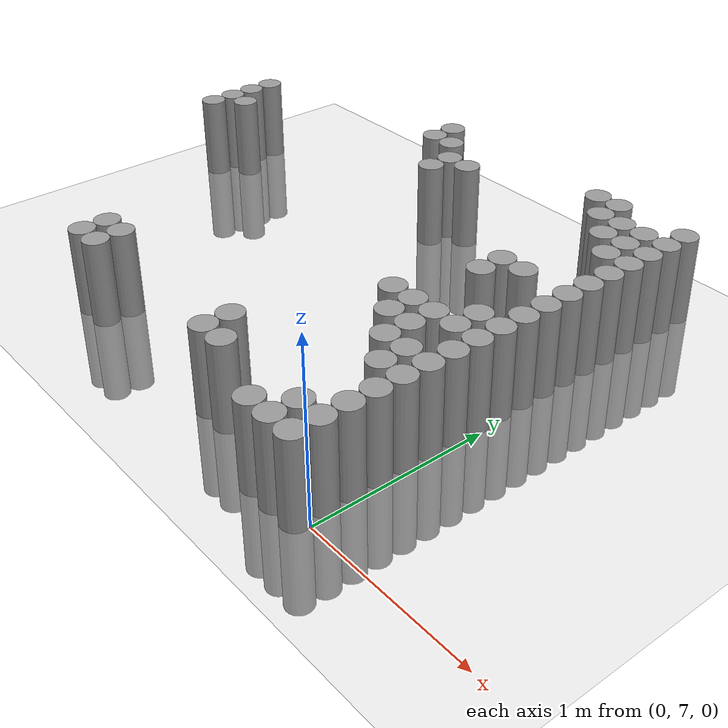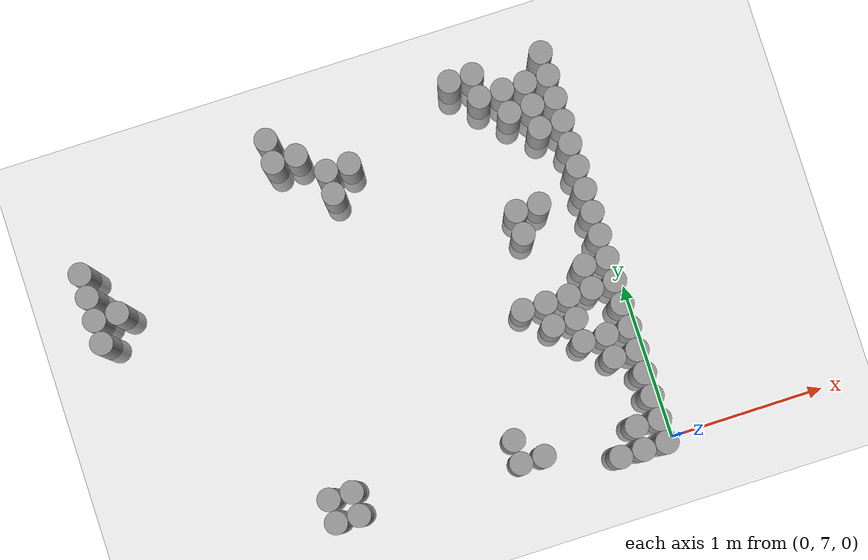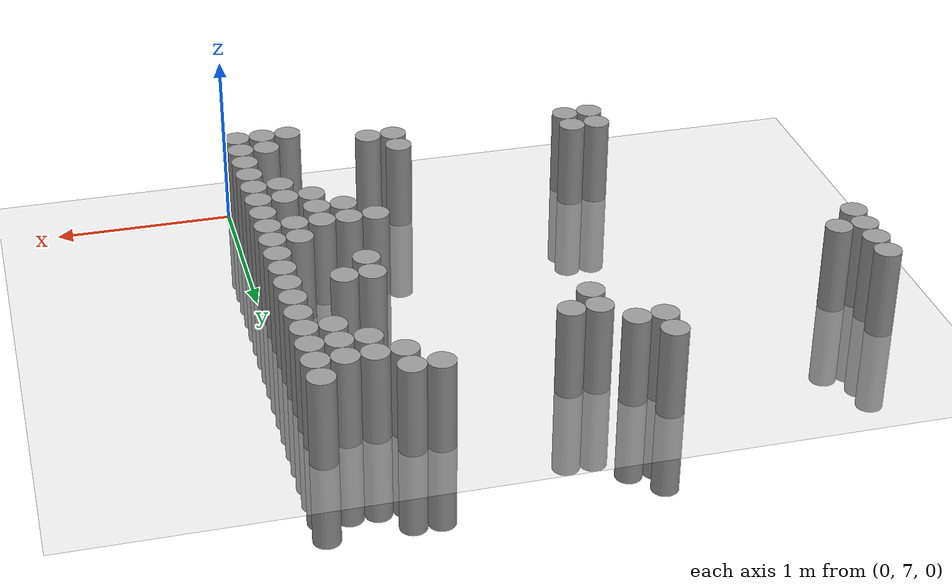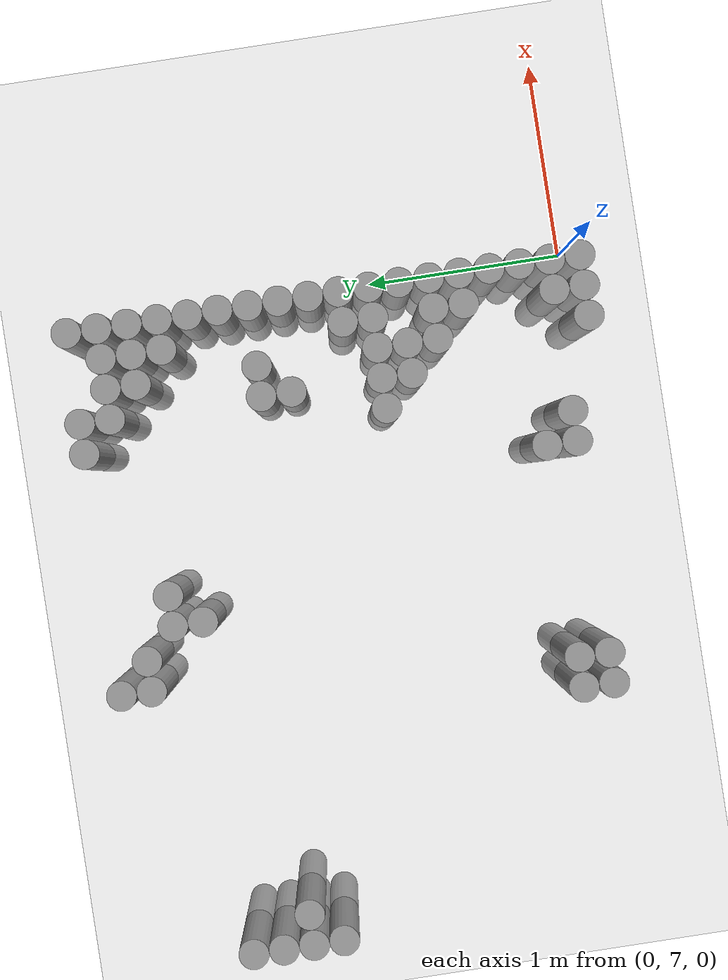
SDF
<sdf version="1.6">
 <world name="default">
  <model name="ground_plane">
   <static>1</static>
   <static>1</static>
   <link name="link">
    <collision name="collision">
     <geometry><plane><normal>0 0 1</normal><size>100 100</size></plane></geometry>
     <surface><friction><ode><mu>100</mu><mu2>50</mu2></ode></friction></surface>
    </collision>
    <visual name="visual">
     <cast_shadows>0</cast_shadows>
     <geometry><plane><normal>0 0 1</normal><size>100 100</size></plane></geometry>
     <material>
      <script><uri>file://media/materials/scripts/gazebo.material</uri><name>Gazebo/Grey</name></script>
     </material>
    </visual>
   </link>
  </model>
  <model name="unit_cylinder_162">
   <static>1</static>
   <pose>-3.225000 8.625000 0.000000 0.000000 0.000000 0.000000</pose>
   <link name="link">
    <inertial>
     <mass>1</mass>
     <inertia><ixx>0.145833</ixx><ixy>0</ixy><ixz>0</ixz><iyy>0.145833</iyy><iyz>0</iyz><izz>0.125</izz></inertia>
    </inertial>
    <collision name="collision">
     <geometry><cylinder><radius>0.075000</radius><length>1</length></cylinder></geometry>
    </collision>
    <visual name="visual">
     <geometry><cylinder><radius>0.075000</radius><length>1</length></cylinder></geometry>
     <material>
      <script><name>Gazebo/Grey</name><uri>file://media/materials/scripts/gazebo.material</uri></script>
     </material>
    </visual>
   </link>
  </model>
  <model name="unit_cylinder_163">
   <static>1</static>
   <pose>-3.225000 8.775000 0.000000 0.000000 0.000000 0.000000</pose>
   <link name="link">
    <inertial>
     <mass>1</mass>
     <inertia><ixx>0.145833</ixx><ixy>0</ixy><ixz>0</ixz><iyy>0.145833</iyy><iyz>0</iyz><izz>0.125</izz></inertia>
    </inertial>
    <collision name="collision">
     <geometry><cylinder><radius>0.075000</radius><length>1</length></cylinder></geometry>
    </collision>
    <visual name="visual">
     <geometry><cylinder><radius>0.075000</radius><length>1</length></cylinder></geometry>
     <material>
      <script><name>Gazebo/Grey</name><uri>file://media/materials/scripts/gazebo.material</uri></script>
     </material>
    </visual>
   </link>
  </model>
  <model name="unit_cylinder_164">
   <static>1</static>
   <pose>-3.225000 8.925000 0.000000 0.000000 0.000000 0.000000</pose>
   <link name="link">
    <inertial>
     <mass>1</mass>
     <inertia><ixx>0.145833</ixx><ixy>0</ixy><ixz>0</ixz><iyy>0.145833</iyy><iyz>0</iyz><izz>0.125</izz></inertia>
    </inertial>
    <collision name="collision">
     <geometry><cylinder><radius>0.075000</radius><length>1</length></cylinder></geometry>
    </collision>
    <visual name="visual">
     <geometry><cylinder><radius>0.075000</radius><length>1</length></cylinder></geometry>
     <material>
      <script><name>Gazebo/Grey</name><uri>file://media/materials/scripts/gazebo.material</uri></script>
     </material>
    </visual>
   </link>
  </model>
  <model name="unit_cylinder_165">
   <static>1</static>
   <pose>-3.225000 9.075000 0.000000 0.000000 0.000000 0.000000</pose>
   <link name="link">
    <inertial>
     <mass>1</mass>
     <inertia><ixx>0.145833</ixx><ixy>0</ixy><ixz>0</ixz><iyy>0.145833</iyy><iyz>0</iyz><izz>0.125</izz></inertia>
    </inertial>
    <collision name="collision">
     <geometry><cylinder><radius>0.075000</radius><length>1</length></cylinder></geometry>
    </collision>
    <visual name="visual">
     <geometry><cylinder><radius>0.075000</radius><length>1</length></cylinder></geometry>
     <material>
      <script><name>Gazebo/Grey</name><uri>file://media/materials/scripts/gazebo.material</uri></script>
     </material>
    </visual>
   </link>
  </model>
  <model name="unit_cylinder_167">
   <static>1</static>
   <pose>-3.075000 8.775000 0.000000 0.000000 0.000000 0.000000</pose>
   <link name="link">
    <inertial>
     <mass>1</mass>
     <inertia><ixx>0.145833</ixx><ixy>0</ixy><ixz>0</ixz><iyy>0.145833</iyy><iyz>0</iyz><izz>0.125</izz></inertia>
    </inertial>
    <collision name="collision">
     <geometry><cylinder><radius>0.075000</radius><length>1</length></cylinder></geometry>
    </collision>
    <visual name="visual">
     <geometry><cylinder><radius>0.075000</radius><length>1</length></cylinder></geometry>
     <material>
      <script><name>Gazebo/Grey</name><uri>file://media/materials/scripts/gazebo.material</uri></script>
     </material>
    </visual>
   </link>
  </model>
  <model name="unit_cylinder_186">
   <static>1</static>
   <pose>-2.175000 7.125000 0.000000 0.000000 0.000000 0.000000</pose>
   <link name="link">
    <inertial>
     <mass>1</mass>
     <inertia><ixx>0.145833</ixx><ixy>0</ixy><ixz>0</ixz><iyy>0.145833</iyy><iyz>0</iyz><izz>0.125</izz></inertia>
    </inertial>
    <collision name="collision">
     <geometry><cylinder><radius>0.075000</radius><length>1</length></cylinder></geometry>
    </collision>
    <visual name="visual">
     <geometry><cylinder><radius>0.075000</radius><length>1</length></cylinder></geometry>
     <material>
      <script><name>Gazebo/Grey</name><uri>file://media/materials/scripts/gazebo.material</uri></script>
     </material>
    </visual>
   </link>
  </model>
  <model name="unit_cylinder_187">
   <static>1</static>
   <pose>-2.175000 7.275000 0.000000 0.000000 0.000000 0.000000</pose>
   <link name="link">
    <inertial>
     <mass>1</mass>
     <inertia><ixx>0.145833</ixx><ixy>0</ixy><ixz>0</ixz><iyy>0.145833</iyy><iyz>0</iyz><izz>0.125</izz></inertia>
    </inertial>
    <collision name="collision">
     <geometry><cylinder><radius>0.075000</radius><length>1</length></cylinder></geometry>
    </collision>
    <visual name="visual">
     <geometry><cylinder><radius>0.075000</radius><length>1</length></cylinder></geometry>
     <material>
      <script><name>Gazebo/Grey</name><uri>file://media/materials/scripts/gazebo.material</uri></script>
     </material>
    </visual>
   </link>
  </model>
  <model name="unit_cylinder_194">
   <static>1</static>
   <pose>-2.025000 7.125000 0.000000 0.000000 0.000000 0.000000</pose>
   <link name="link">
    <inertial>
     <mass>1</mass>
     <inertia><ixx>0.145833</ixx><ixy>0</ixy><ixz>0</ixz><iyy>0.145833</iyy><iyz>0</iyz><izz>0.125</izz></inertia>
    </inertial>
    <collision name="collision">
     <geometry><cylinder><radius>0.075000</radius><length>1</length></cylinder></geometry>
    </collision>
    <visual name="visual">
     <geometry><cylinder><radius>0.075000</radius><length>1</length></cylinder></geometry>
     <material>
      <script><name>Gazebo/Grey</name><uri>file://media/materials/scripts/gazebo.material</uri></script>
     </material>
    </visual>
   </link>
  </model>
  <model name="unit_cylinder_195">
   <static>1</static>
   <pose>-2.025000 7.275000 0.000000 0.000000 0.000000 0.000000</pose>
   <link name="link">
    <inertial>
     <mass>1</mass>
     <inertia><ixx>0.145833</ixx><ixy>0</ixy><ixz>0</ixz><iyy>0.145833</iyy><iyz>0</iyz><izz>0.125</izz></inertia>
    </inertial>
    <collision name="collision">
     <geometry><cylinder><radius>0.075000</radius><length>1</length></cylinder></geometry>
    </collision>
    <visual name="visual">
     <geometry><cylinder><radius>0.075000</radius><length>1</length></cylinder></geometry>
     <material>
      <script><name>Gazebo/Grey</name><uri>file://media/materials/scripts/gazebo.material</uri></script>
     </material>
    </visual>
   </link>
  </model>
  <model name="unit_cylinder_200">
   <static>1</static>
   <pose>-1.875000 9.375000 0.000000 0.000000 0.000000 0.000000</pose>
   <link name="link">
    <inertial>
     <mass>1</mass>
     <inertia><ixx>0.145833</ixx><ixy>0</ixy><ixz>0</ixz><iyy>0.145833</iyy><iyz>0</iyz><izz>0.125</izz></inertia>
    </inertial>
    <collision name="collision">
     <geometry><cylinder><radius>0.075000</radius><length>1</length></cylinder></geometry>
    </collision>
    <visual name="visual">
     <geometry><cylinder><radius>0.075000</radius><length>1</length></cylinder></geometry>
     <material>
      <script><name>Gazebo/Grey</name><uri>file://media/materials/scripts/gazebo.material</uri></script>
     </material>
    </visual>
   </link>
  </model>
  <model name="unit_cylinder_201">
   <static>1</static>
   <pose>-1.875000 9.525000 0.000000 0.000000 0.000000 0.000000</pose>
   <link name="link">
    <inertial>
     <mass>1</mass>
     <inertia><ixx>0.145833</ixx><ixy>0</ixy><ixz>0</ixz><iyy>0.145833</iyy><iyz>0</iyz><izz>0.125</izz></inertia>
    </inertial>
    <collision name="collision">
     <geometry><cylinder><radius>0.075000</radius><length>1</length></cylinder></geometry>
    </collision>
    <visual name="visual">
     <geometry><cylinder><radius>0.075000</radius><length>1</length></cylinder></geometry>
     <material>
      <script><name>Gazebo/Grey</name><uri>file://media/materials/scripts/gazebo.material</uri></script>
     </material>
    </visual>
   </link>
  </model>
  <model name="unit_cylinder_204">
   <static>1</static>
   <pose>-1.725000 9.375000 0.000000 0.000000 0.000000 0.000000</pose>
   <link name="link">
    <inertial>
     <mass>1</mass>
     <inertia><ixx>0.145833</ixx><ixy>0</ixy><ixz>0</ixz><iyy>0.145833</iyy><iyz>0</iyz><izz>0.125</izz></inertia>
    </inertial>
    <collision name="collision">
     <geometry><cylinder><radius>0.075000</radius><length>1</length></cylinder></geometry>
    </collision>
    <visual name="visual">
     <geometry><cylinder><radius>0.075000</radius><length>1</length></cylinder></geometry>
     <material>
      <script><name>Gazebo/Grey</name><uri>file://media/materials/scripts/gazebo.material</uri></script>
     </material>
    </visual>
   </link>
  </model>
  <model name="unit_cylinder_207">
   <static>1</static>
   <pose>-1.575000 9.075000 0.000000 0.000000 0.000000 0.000000</pose>
   <link name="link">
    <inertial>
     <mass>1</mass>
     <inertia><ixx>0.145833</ixx><ixy>0</ixy><ixz>0</ixz><iyy>0.145833</iyy><iyz>0</iyz><izz>0.125</izz></inertia>
    </inertial>
    <collision name="collision">
     <geometry><cylinder><radius>0.075000</radius><length>1</length></cylinder></geometry>
    </collision>
    <visual name="visual">
     <geometry><cylinder><radius>0.075000</radius><length>1</length></cylinder></geometry>
     <material>
      <script><name>Gazebo/Grey</name><uri>file://media/materials/scripts/gazebo.material</uri></script>
     </material>
    </visual>
   </link>
  </model>
  <model name="unit_cylinder_208">
   <static>1</static>
   <pose>-1.575000 9.225000 0.000000 0.000000 0.000000 0.000000</pose>
   <link name="link">
    <inertial>
     <mass>1</mass>
     <inertia><ixx>0.145833</ixx><ixy>0</ixy><ixz>0</ixz><iyy>0.145833</iyy><iyz>0</iyz><izz>0.125</izz></inertia>
    </inertial>
    <collision name="collision">
     <geometry><cylinder><radius>0.075000</radius><length>1</length></cylinder></geometry>
    </collision>
    <visual name="visual">
     <geometry><cylinder><radius>0.075000</radius><length>1</length></cylinder></geometry>
     <material>
      <script><name>Gazebo/Grey</name><uri>file://media/materials/scripts/gazebo.material</uri></script>
     </material>
    </visual>
   </link>
  </model>
  <model name="unit_cylinder_212">
   <static>1</static>
   <pose>-1.425000 9.225000 0.000000 0.000000 0.000000 0.000000</pose>
   <link name="link">
    <inertial>
     <mass>1</mass>
     <inertia><ixx>0.145833</ixx><ixy>0</ixy><ixz>0</ixz><iyy>0.145833</iyy><iyz>0</iyz><izz>0.125</izz></inertia>
    </inertial>
    <collision name="collision">
     <geometry><cylinder><radius>0.075000</radius><length>1</length></cylinder></geometry>
    </collision>
    <visual name="visual">
     <geometry><cylinder><radius>0.075000</radius><length>1</length></cylinder></geometry>
     <material>
      <script><name>Gazebo/Grey</name><uri>file://media/materials/scripts/gazebo.material</uri></script>
     </material>
    </visual>
   </link>
  </model>
  <model name="unit_cylinder_222">
   <static>1</static>
   <pose>-0.975000 7.125000 0.000000 0.000000 0.000000 0.000000</pose>
   <link name="link">
    <inertial>
     <mass>1</mass>
     <inertia><ixx>0.145833</ixx><ixy>0</ixy><ixz>0</ixz><iyy>0.145833</iyy><iyz>0</iyz><izz>0.125</izz></inertia>
    </inertial>
    <collision name="collision">
     <geometry><cylinder><radius>0.075000</radius><length>1</length></cylinder></geometry>
    </collision>
    <visual name="visual">
     <geometry><cylinder><radius>0.075000</radius><length>1</length></cylinder></geometry>
     <material>
      <script><name>Gazebo/Grey</name><uri>file://media/materials/scripts/gazebo.material</uri></script>
     </material>
    </visual>
   </link>
  </model>
  <model name="unit_cylinder_223">
   <static>1</static>
   <pose>-0.975000 7.275000 0.000000 0.000000 0.000000 0.000000</pose>
   <link name="link">
    <inertial>
     <mass>1</mass>
     <inertia><ixx>0.145833</ixx><ixy>0</ixy><ixz>0</ixz><iyy>0.145833</iyy><iyz>0</iyz><izz>0.125</izz></inertia>
    </inertial>
    <collision name="collision">
     <geometry><cylinder><radius>0.075000</radius><length>1</length></cylinder></geometry>
    </collision>
    <visual name="visual">
     <geometry><cylinder><radius>0.075000</radius><length>1</length></cylinder></geometry>
     <material>
      <script><name>Gazebo/Grey</name><uri>file://media/materials/scripts/gazebo.material</uri></script>
     </material>
    </visual>
   </link>
  </model>
  <model name="unit_cylinder_226">
   <static>1</static>
   <pose>-0.825000 7.125000 0.000000 0.000000 0.000000 0.000000</pose>
   <link name="link">
    <inertial>
     <mass>1</mass>
     <inertia><ixx>0.145833</ixx><ixy>0</ixy><ixz>0</ixz><iyy>0.145833</iyy><iyz>0</iyz><izz>0.125</izz></inertia>
    </inertial>
    <collision name="collision">
     <geometry><cylinder><radius>0.075000</radius><length>1</length></cylinder></geometry>
    </collision>
    <visual name="visual">
     <geometry><cylinder><radius>0.075000</radius><length>1</length></cylinder></geometry>
     <material>
      <script><name>Gazebo/Grey</name><uri>file://media/materials/scripts/gazebo.material</uri></script>
     </material>
    </visual>
   </link>
  </model>
  <model name="unit_cylinder_229">
   <static>1</static>
   <pose>-0.675000 8.025000 0.000000 0.000000 0.000000 0.000000</pose>
   <link name="link">
    <inertial>
     <mass>1</mass>
     <inertia><ixx>0.145833</ixx><ixy>0</ixy><ixz>0</ixz><iyy>0.145833</iyy><iyz>0</iyz><izz>0.125</izz></inertia>
    </inertial>
    <collision name="collision">
     <geometry><cylinder><radius>0.075000</radius><length>1</length></cylinder></geometry>
    </collision>
    <visual name="visual">
     <geometry><cylinder><radius>0.075000</radius><length>1</length></cylinder></geometry>
     <material>
      <script><name>Gazebo/Grey</name><uri>file://media/materials/scripts/gazebo.material</uri></script>
     </material>
    </visual>
   </link>
  </model>
  <model name="unit_cylinder_230">
   <static>1</static>
   <pose>-0.675000 9.525000 0.000000 0.000000 0.000000 0.000000</pose>
   <link name="link">
    <inertial>
     <mass>1</mass>
     <inertia><ixx>0.145833</ixx><ixy>0</ixy><ixz>0</ixz><iyy>0.145833</iyy><iyz>0</iyz><izz>0.125</izz></inertia>
    </inertial>
    <collision name="collision">
     <geometry><cylinder><radius>0.075000</radius><length>1</length></cylinder></geometry>
    </collision>
    <visual name="visual">
     <geometry><cylinder><radius>0.075000</radius><length>1</length></cylinder></geometry>
     <material>
      <script><name>Gazebo/Grey</name><uri>file://media/materials/scripts/gazebo.material</uri></script>
     </material>
    </visual>
   </link>
  </model>
  <model name="unit_cylinder_235">
   <static>1</static>
   <pose>-0.525000 7.875000 0.000000 0.000000 0.000000 0.000000</pose>
   <link name="link">
    <inertial>
     <mass>1</mass>
     <inertia><ixx>0.145833</ixx><ixy>0</ixy><ixz>0</ixz><iyy>0.145833</iyy><iyz>0</iyz><izz>0.125</izz></inertia>
    </inertial>
    <collision name="collision">
     <geometry><cylinder><radius>0.075000</radius><length>1</length></cylinder></geometry>
    </collision>
    <visual name="visual">
     <geometry><cylinder><radius>0.075000</radius><length>1</length></cylinder></geometry>
     <material>
      <script><name>Gazebo/Grey</name><uri>file://media/materials/scripts/gazebo.material</uri></script>
     </material>
    </visual>
   </link>
  </model>
  <model name="unit_cylinder_236">
   <static>1</static>
   <pose>-0.525000 8.025000 0.000000 0.000000 0.000000 0.000000</pose>
   <link name="link">
    <inertial>
     <mass>1</mass>
     <inertia><ixx>0.145833</ixx><ixy>0</ixy><ixz>0</ixz><iyy>0.145833</iyy><iyz>0</iyz><izz>0.125</izz></inertia>
    </inertial>
    <collision name="collision">
     <geometry><cylinder><radius>0.075000</radius><length>1</length></cylinder></geometry>
    </collision>
    <visual name="visual">
     <geometry><cylinder><radius>0.075000</radius><length>1</length></cylinder></geometry>
     <material>
      <script><name>Gazebo/Grey</name><uri>file://media/materials/scripts/gazebo.material</uri></script>
     </material>
    </visual>
   </link>
  </model>
  <model name="unit_cylinder_237">
   <static>1</static>
   <pose>-0.525000 8.475000 0.000000 0.000000 0.000000 0.000000</pose>
   <link name="link">
    <inertial>
     <mass>1</mass>
     <inertia><ixx>0.145833</ixx><ixy>0</ixy><ixz>0</ixz><iyy>0.145833</iyy><iyz>0</iyz><izz>0.125</izz></inertia>
    </inertial>
    <collision name="collision">
     <geometry><cylinder><radius>0.075000</radius><length>1</length></cylinder></geometry>
    </collision>
    <visual name="visual">
     <geometry><cylinder><radius>0.075000</radius><length>1</length></cylinder></geometry>
     <material>
      <script><name>Gazebo/Grey</name><uri>file://media/materials/scripts/gazebo.material</uri></script>
     </material>
    </visual>
   </link>
  </model>
  <model name="unit_cylinder_238">
   <static>1</static>
   <pose>-0.525000 8.625000 0.000000 0.000000 0.000000 0.000000</pose>
   <link name="link">
    <inertial>
     <mass>1</mass>
     <inertia><ixx>0.145833</ixx><ixy>0</ixy><ixz>0</ixz><iyy>0.145833</iyy><iyz>0</iyz><izz>0.125</izz></inertia>
    </inertial>
    <collision name="collision">
     <geometry><cylinder><radius>0.075000</radius><length>1</length></cylinder></geometry>
    </collision>
    <visual name="visual">
     <geometry><cylinder><radius>0.075000</radius><length>1</length></cylinder></geometry>
     <material>
      <script><name>Gazebo/Grey</name><uri>file://media/materials/scripts/gazebo.material</uri></script>
     </material>
    </visual>
   </link>
  </model>
  <model name="unit_cylinder_239">
   <static>1</static>
   <pose>-0.525000 9.375000 0.000000 0.000000 0.000000 0.000000</pose>
   <link name="link">
    <inertial>
     <mass>1</mass>
     <inertia><ixx>0.145833</ixx><ixy>0</ixy><ixz>0</ixz><iyy>0.145833</iyy><iyz>0</iyz><izz>0.125</izz></inertia>
    </inertial>
    <collision name="collision">
     <geometry><cylinder><radius>0.075000</radius><length>1</length></cylinder></geometry>
    </collision>
    <visual name="visual">
     <geometry><cylinder><radius>0.075000</radius><length>1</length></cylinder></geometry>
     <material>
      <script><name>Gazebo/Grey</name><uri>file://media/materials/scripts/gazebo.material</uri></script>
     </material>
    </visual>
   </link>
  </model>
  <model name="unit_cylinder_240">
   <static>1</static>
   <pose>-0.525000 9.525000 0.000000 0.000000 0.000000 0.000000</pose>
   <link name="link">
    <inertial>
     <mass>1</mass>
     <inertia><ixx>0.145833</ixx><ixy>0</ixy><ixz>0</ixz><iyy>0.145833</iyy><iyz>0</iyz><izz>0.125</izz></inertia>
    </inertial>
    <collision name="collision">
     <geometry><cylinder><radius>0.075000</radius><length>1</length></cylinder></geometry>
    </collision>
    <visual name="visual">
     <geometry><cylinder><radius>0.075000</radius><length>1</length></cylinder></geometry>
     <material>
      <script><name>Gazebo/Grey</name><uri>file://media/materials/scripts/gazebo.material</uri></script>
     </material>
    </visual>
   </link>
  </model>
  <model name="unit_cylinder_247">
   <static>1</static>
   <pose>-0.375000 6.975000 0.000000 0.000000 0.000000 0.000000</pose>
   <link name="link">
    <inertial>
     <mass>1</mass>
     <inertia><ixx>0.145833</ixx><ixy>0</ixy><ixz>0</ixz><iyy>0.145833</iyy><iyz>0</iyz><izz>0.125</izz></inertia>
    </inertial>
    <collision name="collision">
     <geometry><cylinder><radius>0.075000</radius><length>1</length></cylinder></geometry>
    </collision>
    <visual name="visual">
     <geometry><cylinder><radius>0.075000</radius><length>1</length></cylinder></geometry>
     <material>
      <script><name>Gazebo/Grey</name><uri>file://media/materials/scripts/gazebo.material</uri></script>
     </material>
    </visual>
   </link>
  </model>
  <model name="unit_cylinder_248">
   <static>1</static>
   <pose>-0.375000 7.725000 0.000000 0.000000 0.000000 0.000000</pose>
   <link name="link">
    <inertial>
     <mass>1</mass>
     <inertia><ixx>0.145833</ixx><ixy>0</ixy><ixz>0</ixz><iyy>0.145833</iyy><iyz>0</iyz><izz>0.125</izz></inertia>
    </inertial>
    <collision name="collision">
     <geometry><cylinder><radius>0.075000</radius><length>1</length></cylinder></geometry>
    </collision>
    <visual name="visual">
     <geometry><cylinder><radius>0.075000</radius><length>1</length></cylinder></geometry>
     <material>
      <script><name>Gazebo/Grey</name><uri>file://media/materials/scripts/gazebo.material</uri></script>
     </material>
    </visual>
   </link>
  </model>
  <model name="unit_cylinder_249">
   <static>1</static>
   <pose>-0.375000 7.875000 0.000000 0.000000 0.000000 0.000000</pose>
   <link name="link">
    <inertial>
     <mass>1</mass>
     <inertia><ixx>0.145833</ixx><ixy>0</ixy><ixz>0</ixz><iyy>0.145833</iyy><iyz>0</iyz><izz>0.125</izz></inertia>
    </inertial>
    <collision name="collision">
     <geometry><cylinder><radius>0.075000</radius><length>1</length></cylinder></geometry>
    </collision>
    <visual name="visual">
     <geometry><cylinder><radius>0.075000</radius><length>1</length></cylinder></geometry>
     <material>
      <script><name>Gazebo/Grey</name><uri>file://media/materials/scripts/gazebo.material</uri></script>
     </material>
    </visual>
   </link>
  </model>
  <model name="unit_cylinder_250">
   <static>1</static>
   <pose>-0.375000 8.025000 0.000000 0.000000 0.000000 0.000000</pose>
   <link name="link">
    <inertial>
     <mass>1</mass>
     <inertia><ixx>0.145833</ixx><ixy>0</ixy><ixz>0</ixz><iyy>0.145833</iyy><iyz>0</iyz><izz>0.125</izz></inertia>
    </inertial>
    <collision name="collision">
     <geometry><cylinder><radius>0.075000</radius><length>1</length></cylinder></geometry>
    </collision>
    <visual name="visual">
     <geometry><cylinder><radius>0.075000</radius><length>1</length></cylinder></geometry>
     <material>
      <script><name>Gazebo/Grey</name><uri>file://media/materials/scripts/gazebo.material</uri></script>
     </material>
    </visual>
   </link>
  </model>
  <model name="unit_cylinder_251">
   <static>1</static>
   <pose>-0.375000 8.625000 0.000000 0.000000 0.000000 0.000000</pose>
   <link name="link">
    <inertial>
     <mass>1</mass>
     <inertia><ixx>0.145833</ixx><ixy>0</ixy><ixz>0</ixz><iyy>0.145833</iyy><iyz>0</iyz><izz>0.125</izz></inertia>
    </inertial>
    <collision name="collision">
     <geometry><cylinder><radius>0.075000</radius><length>1</length></cylinder></geometry>
    </collision>
    <visual name="visual">
     <geometry><cylinder><radius>0.075000</radius><length>1</length></cylinder></geometry>
     <material>
      <script><name>Gazebo/Grey</name><uri>file://media/materials/scripts/gazebo.material</uri></script>
     </material>
    </visual>
   </link>
  </model>
  <model name="unit_cylinder_252">
   <static>1</static>
   <pose>-0.375000 9.225000 0.000000 0.000000 0.000000 0.000000</pose>
   <link name="link">
    <inertial>
     <mass>1</mass>
     <inertia><ixx>0.145833</ixx><ixy>0</ixy><ixz>0</ixz><iyy>0.145833</iyy><iyz>0</iyz><izz>0.125</izz></inertia>
    </inertial>
    <collision name="collision">
     <geometry><cylinder><radius>0.075000</radius><length>1</length></cylinder></geometry>
    </collision>
    <visual name="visual">
     <geometry><cylinder><radius>0.075000</radius><length>1</length></cylinder></geometry>
     <material>
      <script><name>Gazebo/Grey</name><uri>file://media/materials/scripts/gazebo.material</uri></script>
     </material>
    </visual>
   </link>
  </model>
  <model name="unit_cylinder_253">
   <static>1</static>
   <pose>-0.375000 9.375000 0.000000 0.000000 0.000000 0.000000</pose>
   <link name="link">
    <inertial>
     <mass>1</mass>
     <inertia><ixx>0.145833</ixx><ixy>0</ixy><ixz>0</ixz><iyy>0.145833</iyy><iyz>0</iyz><izz>0.125</izz></inertia>
    </inertial>
    <collision name="collision">
     <geometry><cylinder><radius>0.075000</radius><length>1</length></cylinder></geometry>
    </collision>
    <visual name="visual">
     <geometry><cylinder><radius>0.075000</radius><length>1</length></cylinder></geometry>
     <material>
      <script><name>Gazebo/Grey</name><uri>file://media/materials/scripts/gazebo.material</uri></script>
     </material>
    </visual>
   </link>
  </model>
  <model name="unit_cylinder_258">
   <static>1</static>
   <pose>-0.225000 6.975000 0.000000 0.000000 0.000000 0.000000</pose>
   <link name="link">
    <inertial>
     <mass>1</mass>
     <inertia><ixx>0.145833</ixx><ixy>0</ixy><ixz>0</ixz><iyy>0.145833</iyy><iyz>0</iyz><izz>0.125</izz></inertia>
    </inertial>
    <collision name="collision">
     <geometry><cylinder><radius>0.075000</radius><length>1</length></cylinder></geometry>
    </collision>
    <visual name="visual">
     <geometry><cylinder><radius>0.075000</radius><length>1</length></cylinder></geometry>
     <material>
      <script><name>Gazebo/Grey</name><uri>file://media/materials/scripts/gazebo.material</uri></script>
     </material>
    </visual>
   </link>
  </model>
  <model name="unit_cylinder_259">
   <static>1</static>
   <pose>-0.225000 7.125000 0.000000 0.000000 0.000000 0.000000</pose>
   <link name="link">
    <inertial>
     <mass>1</mass>
     <inertia><ixx>0.145833</ixx><ixy>0</ixy><ixz>0</ixz><iyy>0.145833</iyy><iyz>0</iyz><izz>0.125</izz></inertia>
    </inertial>
    <collision name="collision">
     <geometry><cylinder><radius>0.075000</radius><length>1</length></cylinder></geometry>
    </collision>
    <visual name="visual">
     <geometry><cylinder><radius>0.075000</radius><length>1</length></cylinder></geometry>
     <material>
      <script><name>Gazebo/Grey</name><uri>file://media/materials/scripts/gazebo.material</uri></script>
     </material>
    </visual>
   </link>
  </model>
  <model name="unit_cylinder_260">
   <static>1</static>
   <pose>-0.225000 7.575000 0.000000 0.000000 0.000000 0.000000</pose>
   <link name="link">
    <inertial>
     <mass>1</mass>
     <inertia><ixx>0.145833</ixx><ixy>0</ixy><ixz>0</ixz><iyy>0.145833</iyy><iyz>0</iyz><izz>0.125</izz></inertia>
    </inertial>
    <collision name="collision">
     <geometry><cylinder><radius>0.075000</radius><length>1</length></cylinder></geometry>
    </collision>
    <visual name="visual">
     <geometry><cylinder><radius>0.075000</radius><length>1</length></cylinder></geometry>
     <material>
      <script><name>Gazebo/Grey</name><uri>file://media/materials/scripts/gazebo.material</uri></script>
     </material>
    </visual>
   </link>
  </model>
  <model name="unit_cylinder_261">
   <static>1</static>
   <pose>-0.225000 7.725000 0.000000 0.000000 0.000000 0.000000</pose>
   <link name="link">
    <inertial>
     <mass>1</mass>
     <inertia><ixx>0.145833</ixx><ixy>0</ixy><ixz>0</ixz><iyy>0.145833</iyy><iyz>0</iyz><izz>0.125</izz></inertia>
    </inertial>
    <collision name="collision">
     <geometry><cylinder><radius>0.075000</radius><length>1</length></cylinder></geometry>
    </collision>
    <visual name="visual">
     <geometry><cylinder><radius>0.075000</radius><length>1</length></cylinder></geometry>
     <material>
      <script><name>Gazebo/Grey</name><uri>file://media/materials/scripts/gazebo.material</uri></script>
     </material>
    </visual>
   </link>
  </model>
  <model name="unit_cylinder_262">
   <static>1</static>
   <pose>-0.225000 8.025000 0.000000 0.000000 0.000000 0.000000</pose>
   <link name="link">
    <inertial>
     <mass>1</mass>
     <inertia><ixx>0.145833</ixx><ixy>0</ixy><ixz>0</ixz><iyy>0.145833</iyy><iyz>0</iyz><izz>0.125</izz></inertia>
    </inertial>
    <collision name="collision">
     <geometry><cylinder><radius>0.075000</radius><length>1</length></cylinder></geometry>
    </collision>
    <visual name="visual">
     <geometry><cylinder><radius>0.075000</radius><length>1</length></cylinder></geometry>
     <material>
      <script><name>Gazebo/Grey</name><uri>file://media/materials/scripts/gazebo.material</uri></script>
     </material>
    </visual>
   </link>
  </model>
  <model name="unit_cylinder_263">
   <static>1</static>
   <pose>-0.225000 8.175000 0.000000 0.000000 0.000000 0.000000</pose>
   <link name="link">
    <inertial>
     <mass>1</mass>
     <inertia><ixx>0.145833</ixx><ixy>0</ixy><ixz>0</ixz><iyy>0.145833</iyy><iyz>0</iyz><izz>0.125</izz></inertia>
    </inertial>
    <collision name="collision">
     <geometry><cylinder><radius>0.075000</radius><length>1</length></cylinder></geometry>
    </collision>
    <visual name="visual">
     <geometry><cylinder><radius>0.075000</radius><length>1</length></cylinder></geometry>
     <material>
      <script><name>Gazebo/Grey</name><uri>file://media/materials/scripts/gazebo.material</uri></script>
     </material>
    </visual>
   </link>
  </model>
  <model name="unit_cylinder_264">
   <static>1</static>
   <pose>-0.225000 9.075000 0.000000 0.000000 0.000000 0.000000</pose>
   <link name="link">
    <inertial>
     <mass>1</mass>
     <inertia><ixx>0.145833</ixx><ixy>0</ixy><ixz>0</ixz><iyy>0.145833</iyy><iyz>0</iyz><izz>0.125</izz></inertia>
    </inertial>
    <collision name="collision">
     <geometry><cylinder><radius>0.075000</radius><length>1</length></cylinder></geometry>
    </collision>
    <visual name="visual">
     <geometry><cylinder><radius>0.075000</radius><length>1</length></cylinder></geometry>
     <material>
      <script><name>Gazebo/Grey</name><uri>file://media/materials/scripts/gazebo.material</uri></script>
     </material>
    </visual>
   </link>
  </model>
  <model name="unit_cylinder_265">
   <static>1</static>
   <pose>-0.225000 9.225000 0.000000 0.000000 0.000000 0.000000</pose>
   <link name="link">
    <inertial>
     <mass>1</mass>
     <inertia><ixx>0.145833</ixx><ixy>0</ixy><ixz>0</ixz><iyy>0.145833</iyy><iyz>0</iyz><izz>0.125</izz></inertia>
    </inertial>
    <collision name="collision">
     <geometry><cylinder><radius>0.075000</radius><length>1</length></cylinder></geometry>
    </collision>
    <visual name="visual">
     <geometry><cylinder><radius>0.075000</radius><length>1</length></cylinder></geometry>
     <material>
      <script><name>Gazebo/Grey</name><uri>file://media/materials/scripts/gazebo.material</uri></script>
     </material>
    </visual>
   </link>
  </model>
  <model name="unit_cylinder_266">
   <static>1</static>
   <pose>-0.225000 9.375000 0.000000 0.000000 0.000000 0.000000</pose>
   <link name="link">
    <inertial>
     <mass>1</mass>
     <inertia><ixx>0.145833</ixx><ixy>0</ixy><ixz>0</ixz><iyy>0.145833</iyy><iyz>0</iyz><izz>0.125</izz></inertia>
    </inertial>
    <collision name="collision">
     <geometry><cylinder><radius>0.075000</radius><length>1</length></cylinder></geometry>
    </collision>
    <visual name="visual">
     <geometry><cylinder><radius>0.075000</radius><length>1</length></cylinder></geometry>
     <material>
      <script><name>Gazebo/Grey</name><uri>file://media/materials/scripts/gazebo.material</uri></script>
     </material>
    </visual>
   </link>
  </model>
  <model name="unit_cylinder_279">
   <static>1</static>
   <pose>-0.075000 6.975000 0.000000 0.000000 0.000000 0.000000</pose>
   <link name="link">
    <inertial>
     <mass>1</mass>
     <inertia><ixx>0.145833</ixx><ixy>0</ixy><ixz>0</ixz><iyy>0.145833</iyy><iyz>0</iyz><izz>0.125</izz></inertia>
    </inertial>
    <collision name="collision">
     <geometry><cylinder><radius>0.075000</radius><length>1</length></cylinder></geometry>
    </collision>
    <visual name="visual">
     <geometry><cylinder><radius>0.075000</radius><length>1</length></cylinder></geometry>
     <material>
      <script><name>Gazebo/Grey</name><uri>file://media/materials/scripts/gazebo.material</uri></script>
     </material>
    </visual>
   </link>
  </model>
  <model name="unit_cylinder_280">
   <static>1</static>
   <pose>-0.075000 7.125000 0.000000 0.000000 0.000000 0.000000</pose>
   <link name="link">
    <inertial>
     <mass>1</mass>
     <inertia><ixx>0.145833</ixx><ixy>0</ixy><ixz>0</ixz><iyy>0.145833</iyy><iyz>0</iyz><izz>0.125</izz></inertia>
    </inertial>
    <collision name="collision">
     <geometry><cylinder><radius>0.075000</radius><length>1</length></cylinder></geometry>
    </collision>
    <visual name="visual">
     <geometry><cylinder><radius>0.075000</radius><length>1</length></cylinder></geometry>
     <material>
      <script><name>Gazebo/Grey</name><uri>file://media/materials/scripts/gazebo.material</uri></script>
     </material>
    </visual>
   </link>
  </model>
  <model name="unit_cylinder_281">
   <static>1</static>
   <pose>-0.075000 7.275000 0.000000 0.000000 0.000000 0.000000</pose>
   <link name="link">
    <inertial>
     <mass>1</mass>
     <inertia><ixx>0.145833</ixx><ixy>0</ixy><ixz>0</ixz><iyy>0.145833</iyy><iyz>0</iyz><izz>0.125</izz></inertia>
    </inertial>
    <collision name="collision">
     <geometry><cylinder><radius>0.075000</radius><length>1</length></cylinder></geometry>
    </collision>
    <visual name="visual">
     <geometry><cylinder><radius>0.075000</radius><length>1</length></cylinder></geometry>
     <material>
      <script><name>Gazebo/Grey</name><uri>file://media/materials/scripts/gazebo.material</uri></script>
     </material>
    </visual>
   </link>
  </model>
  <model name="unit_cylinder_282">
   <static>1</static>
   <pose>-0.075000 7.425000 0.000000 0.000000 0.000000 0.000000</pose>
   <link name="link">
    <inertial>
     <mass>1</mass>
     <inertia><ixx>0.145833</ixx><ixy>0</ixy><ixz>0</ixz><iyy>0.145833</iyy><iyz>0</iyz><izz>0.125</izz></inertia>
    </inertial>
    <collision name="collision">
     <geometry><cylinder><radius>0.075000</radius><length>1</length></cylinder></geometry>
    </collision>
    <visual name="visual">
     <geometry><cylinder><radius>0.075000</radius><length>1</length></cylinder></geometry>
     <material>
      <script><name>Gazebo/Grey</name><uri>file://media/materials/scripts/gazebo.material</uri></script>
     </material>
    </visual>
   </link>
  </model>
  <model name="unit_cylinder_283">
   <static>1</static>
   <pose>-0.075000 7.575000 0.000000 0.000000 0.000000 0.000000</pose>
   <link name="link">
    <inertial>
     <mass>1</mass>
     <inertia><ixx>0.145833</ixx><ixy>0</ixy><ixz>0</ixz><iyy>0.145833</iyy><iyz>0</iyz><izz>0.125</izz></inertia>
    </inertial>
    <collision name="collision">
     <geometry><cylinder><radius>0.075000</radius><length>1</length></cylinder></geometry>
    </collision>
    <visual name="visual">
     <geometry><cylinder><radius>0.075000</radius><length>1</length></cylinder></geometry>
     <material>
      <script><name>Gazebo/Grey</name><uri>file://media/materials/scripts/gazebo.material</uri></script>
     </material>
    </visual>
   </link>
  </model>
  <model name="unit_cylinder_284">
   <static>1</static>
   <pose>-0.075000 7.725000 0.000000 0.000000 0.000000 0.000000</pose>
   <link name="link">
    <inertial>
     <mass>1</mass>
     <inertia><ixx>0.145833</ixx><ixy>0</ixy><ixz>0</ixz><iyy>0.145833</iyy><iyz>0</iyz><izz>0.125</izz></inertia>
    </inertial>
    <collision name="collision">
     <geometry><cylinder><radius>0.075000</radius><length>1</length></cylinder></geometry>
    </collision>
    <visual name="visual">
     <geometry><cylinder><radius>0.075000</radius><length>1</length></cylinder></geometry>
     <material>
      <script><name>Gazebo/Grey</name><uri>file://media/materials/scripts/gazebo.material</uri></script>
     </material>
    </visual>
   </link>
  </model>
  <model name="unit_cylinder_285">
   <static>1</static>
   <pose>-0.075000 7.875000 0.000000 0.000000 0.000000 0.000000</pose>
   <link name="link">
    <inertial>
     <mass>1</mass>
     <inertia><ixx>0.145833</ixx><ixy>0</ixy><ixz>0</ixz><iyy>0.145833</iyy><iyz>0</iyz><izz>0.125</izz></inertia>
    </inertial>
    <collision name="collision">
     <geometry><cylinder><radius>0.075000</radius><length>1</length></cylinder></geometry>
    </collision>
    <visual name="visual">
     <geometry><cylinder><radius>0.075000</radius><length>1</length></cylinder></geometry>
     <material>
      <script><name>Gazebo/Grey</name><uri>file://media/materials/scripts/gazebo.material</uri></script>
     </material>
    </visual>
   </link>
  </model>
  <model name="unit_cylinder_286">
   <static>1</static>
   <pose>-0.075000 8.025000 0.000000 0.000000 0.000000 0.000000</pose>
   <link name="link">
    <inertial>
     <mass>1</mass>
     <inertia><ixx>0.145833</ixx><ixy>0</ixy><ixz>0</ixz><iyy>0.145833</iyy><iyz>0</iyz><izz>0.125</izz></inertia>
    </inertial>
    <collision name="collision">
     <geometry><cylinder><radius>0.075000</radius><length>1</length></cylinder></geometry>
    </collision>
    <visual name="visual">
     <geometry><cylinder><radius>0.075000</radius><length>1</length></cylinder></geometry>
     <material>
      <script><name>Gazebo/Grey</name><uri>file://media/materials/scripts/gazebo.material</uri></script>
     </material>
    </visual>
   </link>
  </model>
  <model name="unit_cylinder_287">
   <static>1</static>
   <pose>-0.075000 8.175000 0.000000 0.000000 0.000000 0.000000</pose>
   <link name="link">
    <inertial>
     <mass>1</mass>
     <inertia><ixx>0.145833</ixx><ixy>0</ixy><ixz>0</ixz><iyy>0.145833</iyy><iyz>0</iyz><izz>0.125</izz></inertia>
    </inertial>
    <collision name="collision">
     <geometry><cylinder><radius>0.075000</radius><length>1</length></cylinder></geometry>
    </collision>
    <visual name="visual">
     <geometry><cylinder><radius>0.075000</radius><length>1</length></cylinder></geometry>
     <material>
      <script><name>Gazebo/Grey</name><uri>file://media/materials/scripts/gazebo.material</uri></script>
     </material>
    </visual>
   </link>
  </model>
  <model name="unit_cylinder_288">
   <static>1</static>
   <pose>-0.075000 8.325000 0.000000 0.000000 0.000000 0.000000</pose>
   <link name="link">
    <inertial>
     <mass>1</mass>
     <inertia><ixx>0.145833</ixx><ixy>0</ixy><ixz>0</ixz><iyy>0.145833</iyy><iyz>0</iyz><izz>0.125</izz></inertia>
    </inertial>
    <collision name="collision">
     <geometry><cylinder><radius>0.075000</radius><length>1</length></cylinder></geometry>
    </collision>
    <visual name="visual">
     <geometry><cylinder><radius>0.075000</radius><length>1</length></cylinder></geometry>
     <material>
      <script><name>Gazebo/Grey</name><uri>file://media/materials/scripts/gazebo.material</uri></script>
     </material>
    </visual>
   </link>
  </model>
  <model name="unit_cylinder_289">
   <static>1</static>
   <pose>-0.075000 8.475000 0.000000 0.000000 0.000000 0.000000</pose>
   <link name="link">
    <inertial>
     <mass>1</mass>
     <inertia><ixx>0.145833</ixx><ixy>0</ixy><ixz>0</ixz><iyy>0.145833</iyy><iyz>0</iyz><izz>0.125</izz></inertia>
    </inertial>
    <collision name="collision">
     <geometry><cylinder><radius>0.075000</radius><length>1</length></cylinder></geometry>
    </collision>
    <visual name="visual">
     <geometry><cylinder><radius>0.075000</radius><length>1</length></cylinder></geometry>
     <material>
      <script><name>Gazebo/Grey</name><uri>file://media/materials/scripts/gazebo.material</uri></script>
     </material>
    </visual>
   </link>
  </model>
  <model name="unit_cylinder_290">
   <static>1</static>
   <pose>-0.075000 8.625000 0.000000 0.000000 0.000000 0.000000</pose>
   <link name="link">
    <inertial>
     <mass>1</mass>
     <inertia><ixx>0.145833</ixx><ixy>0</ixy><ixz>0</ixz><iyy>0.145833</iyy><iyz>0</iyz><izz>0.125</izz></inertia>
    </inertial>
    <collision name="collision">
     <geometry><cylinder><radius>0.075000</radius><length>1</length></cylinder></geometry>
    </collision>
    <visual name="visual">
     <geometry><cylinder><radius>0.075000</radius><length>1</length></cylinder></geometry>
     <material>
      <script><name>Gazebo/Grey</name><uri>file://media/materials/scripts/gazebo.material</uri></script>
     </material>
    </visual>
   </link>
  </model>
  <model name="unit_cylinder_291">
   <static>1</static>
   <pose>-0.075000 8.775000 0.000000 0.000000 0.000000 0.000000</pose>
   <link name="link">
    <inertial>
     <mass>1</mass>
     <inertia><ixx>0.145833</ixx><ixy>0</ixy><ixz>0</ixz><iyy>0.145833</iyy><iyz>0</iyz><izz>0.125</izz></inertia>
    </inertial>
    <collision name="collision">
     <geometry><cylinder><radius>0.075000</radius><length>1</length></cylinder></geometry>
    </collision>
    <visual name="visual">
     <geometry><cylinder><radius>0.075000</radius><length>1</length></cylinder></geometry>
     <material>
      <script><name>Gazebo/Grey</name><uri>file://media/materials/scripts/gazebo.material</uri></script>
     </material>
    </visual>
   </link>
  </model>
  <model name="unit_cylinder_292">
   <static>1</static>
   <pose>-0.075000 8.925000 0.000000 0.000000 0.000000 0.000000</pose>
   <link name="link">
    <inertial>
     <mass>1</mass>
     <inertia><ixx>0.145833</ixx><ixy>0</ixy><ixz>0</ixz><iyy>0.145833</iyy><iyz>0</iyz><izz>0.125</izz></inertia>
    </inertial>
    <collision name="collision">
     <geometry><cylinder><radius>0.075000</radius><length>1</length></cylinder></geometry>
    </collision>
    <visual name="visual">
     <geometry><cylinder><radius>0.075000</radius><length>1</length></cylinder></geometry>
     <material>
      <script><name>Gazebo/Grey</name><uri>file://media/materials/scripts/gazebo.material</uri></script>
     </material>
    </visual>
   </link>
  </model>
  <model name="unit_cylinder_293">
   <static>1</static>
   <pose>-0.075000 9.075000 0.000000 0.000000 0.000000 0.000000</pose>
   <link name="link">
    <inertial>
     <mass>1</mass>
     <inertia><ixx>0.145833</ixx><ixy>0</ixy><ixz>0</ixz><iyy>0.145833</iyy><iyz>0</iyz><izz>0.125</izz></inertia>
    </inertial>
    <collision name="collision">
     <geometry><cylinder><radius>0.075000</radius><length>1</length></cylinder></geometry>
    </collision>
    <visual name="visual">
     <geometry><cylinder><radius>0.075000</radius><length>1</length></cylinder></geometry>
     <material>
      <script><name>Gazebo/Grey</name><uri>file://media/materials/scripts/gazebo.material</uri></script>
     </material>
    </visual>
   </link>
  </model>
  <model name="unit_cylinder_294">
   <static>1</static>
   <pose>-0.075000 9.225000 0.000000 0.000000 0.000000 0.000000</pose>
   <link name="link">
    <inertial>
     <mass>1</mass>
     <inertia><ixx>0.145833</ixx><ixy>0</ixy><ixz>0</ixz><iyy>0.145833</iyy><iyz>0</iyz><izz>0.125</izz></inertia>
    </inertial>
    <collision name="collision">
     <geometry><cylinder><radius>0.075000</radius><length>1</length></cylinder></geometry>
    </collision>
    <visual name="visual">
     <geometry><cylinder><radius>0.075000</radius><length>1</length></cylinder></geometry>
     <material>
      <script><name>Gazebo/Grey</name><uri>file://media/materials/scripts/gazebo.material</uri></script>
     </material>
    </visual>
   </link>
  </model>
  <model name="unit_cylinder_295">
   <static>1</static>
   <pose>-0.075000 9.375000 0.000000 0.000000 0.000000 0.000000</pose>
   <link name="link">
    <inertial>
     <mass>1</mass>
     <inertia><ixx>0.145833</ixx><ixy>0</ixy><ixz>0</ixz><iyy>0.145833</iyy><iyz>0</iyz><izz>0.125</izz></inertia>
    </inertial>
    <collision name="collision">
     <geometry><cylinder><radius>0.075000</radius><length>1</length></cylinder></geometry>
    </collision>
    <visual name="visual">
     <geometry><cylinder><radius>0.075000</radius><length>1</length></cylinder></geometry>
     <material>
      <script><name>Gazebo/Grey</name><uri>file://media/materials/scripts/gazebo.material</uri></script>
     </material>
    </visual>
   </link>
  </model>
  <model name="unit_cylinder_296">
   <static>1</static>
   <pose>-0.075000 9.525000 0.000000 0.000000 0.000000 0.000000</pose>
   <link name="link">
    <inertial>
     <mass>1</mass>
     <inertia><ixx>0.145833</ixx><ixy>0</ixy><ixz>0</ixz><iyy>0.145833</iyy><iyz>0</iyz><izz>0.125</izz></inertia>
    </inertial>
    <collision name="collision">
     <geometry><cylinder><radius>0.075000</radius><length>1</length></cylinder></geometry>
    </collision>
    <visual name="visual">
     <geometry><cylinder><radius>0.075000</radius><length>1</length></cylinder></geometry>
     <material>
      <script><name>Gazebo/Grey</name><uri>file://media/materials/scripts/gazebo.material</uri></script>
     </material>
    </visual>
   </link>
  </model>
 </world>
</sdf>
